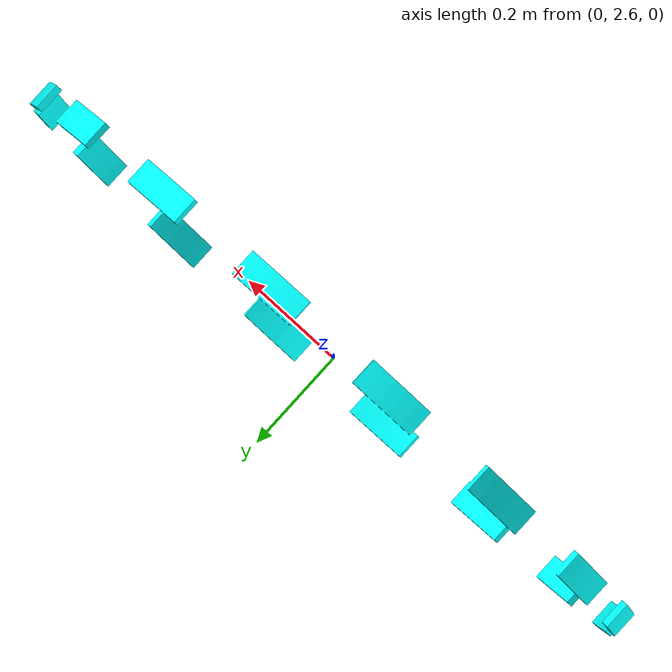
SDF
<?xml version="1.0" encoding="utf-8"?>
<sdf version="1.7">
  <model name="TapeRing">
    <pose>0 0 0 0 0 0</pose>
    <link name="Ring">
      <gravity>1</gravity>
      <self_collide>0</self_collide>
      <pose>3.76507957461273E-15 2.6061448335911 1.89433843499839E-15 0 0 0</pose>
      <must_be_base_link>1</must_be_base_link>
      <velocity_decay>
        <linear>0</linear>
        <angular>0</angular>
      </velocity_decay>
      <inertial>
        <mass>1.32324582370025</mass>
        <pose>0 0 0 0 0 0</pose>
        <inertia>
          <ixx>0.308849390655462</ixx>
          <ixy>1.10680914103785E-16</ixy>
          <ixz>3.42347677984023E-15</ixz>
          <iyy>0.617698781310923</iyy>
          <iyz>5.25508497748423E-16</iyz>
          <izz>0.308849390655462</izz>
        </inertia>
      </inertial>
      <collision name="Ring_collision">
        <pose>-3.76507957461273E-15 -2.6061448335911 -1.89433843499839E-15 0 0 0</pose>
        <geometry>
          <mesh>
            <scale>1 1 1</scale>
            <uri>model://TapeRing/meshes/Ring_col.STL</uri>
          </mesh>
        </geometry>
        <surface>
          <contact>
            <ode />
          </contact>
          <friction>
            <ode>
              <mu>0</mu>
              <mu2>0</mu2>
            </ode>
          </friction>
        </surface>
      </collision>
      <visual name="Ring_visual">
        <pose>-3.76507957461273E-15 -2.6061448335911 -1.89433843499839E-15 0 0 0</pose>
        <material>
          <ambient>0 1 1 1</ambient>
          <diffuse>0 1 1 1</diffuse>
        </material>
        <geometry>
          <mesh>
            <scale>1 1 1</scale>
            <uri>model://TapeRing/meshes/Ring.STL</uri>
          </mesh>
        </geometry>
      </visual>
    </link>
  </model>
</sdf>
